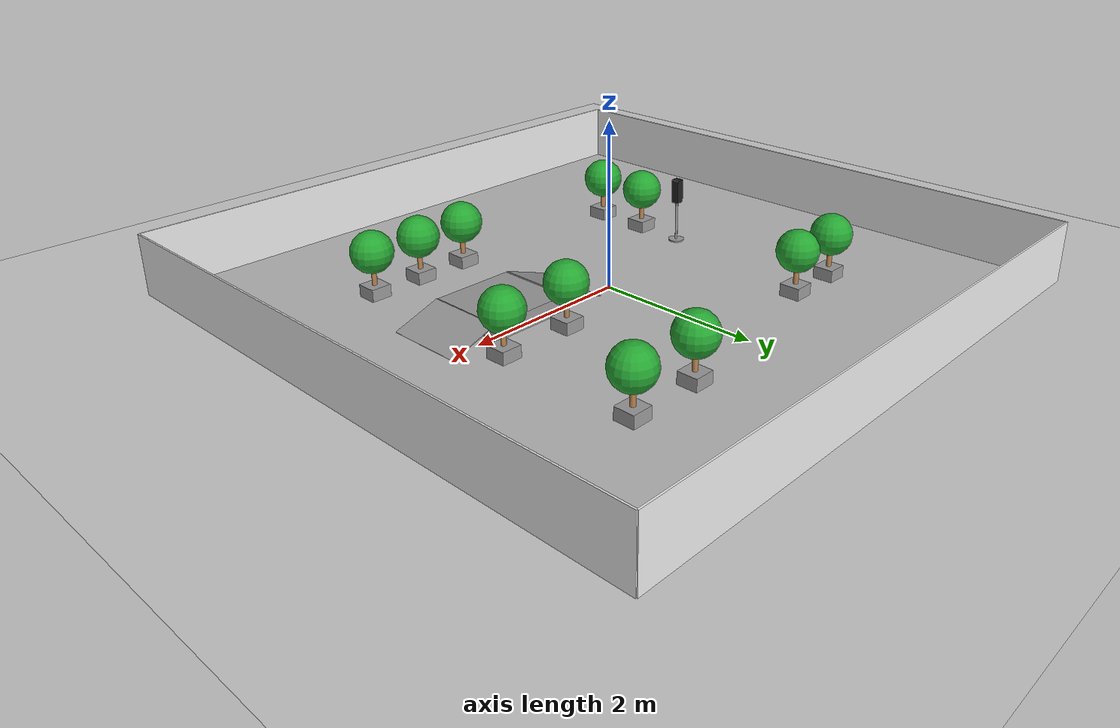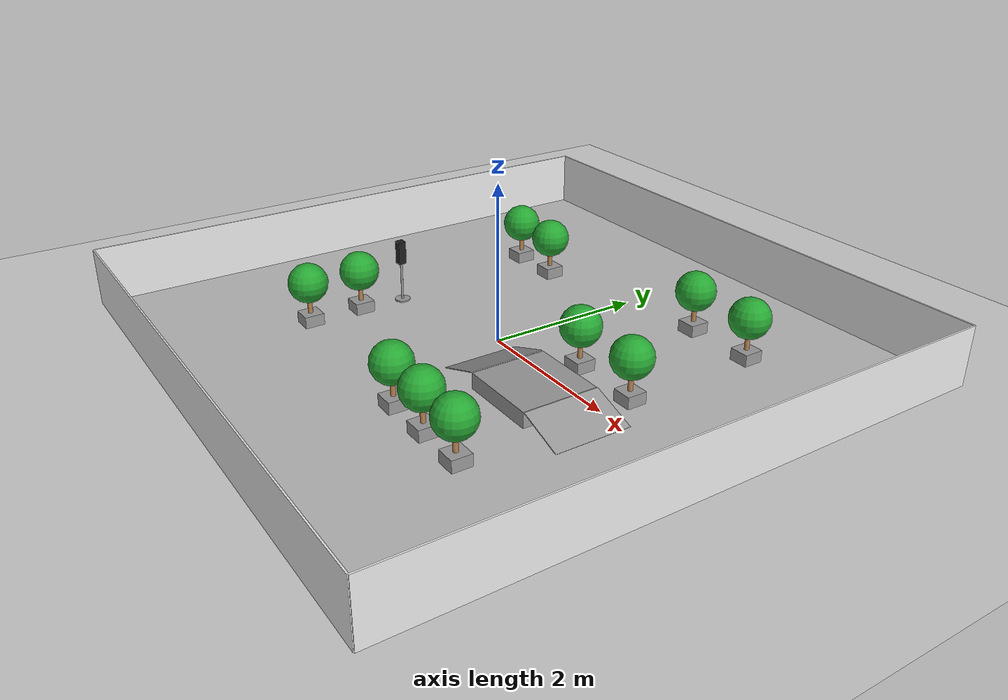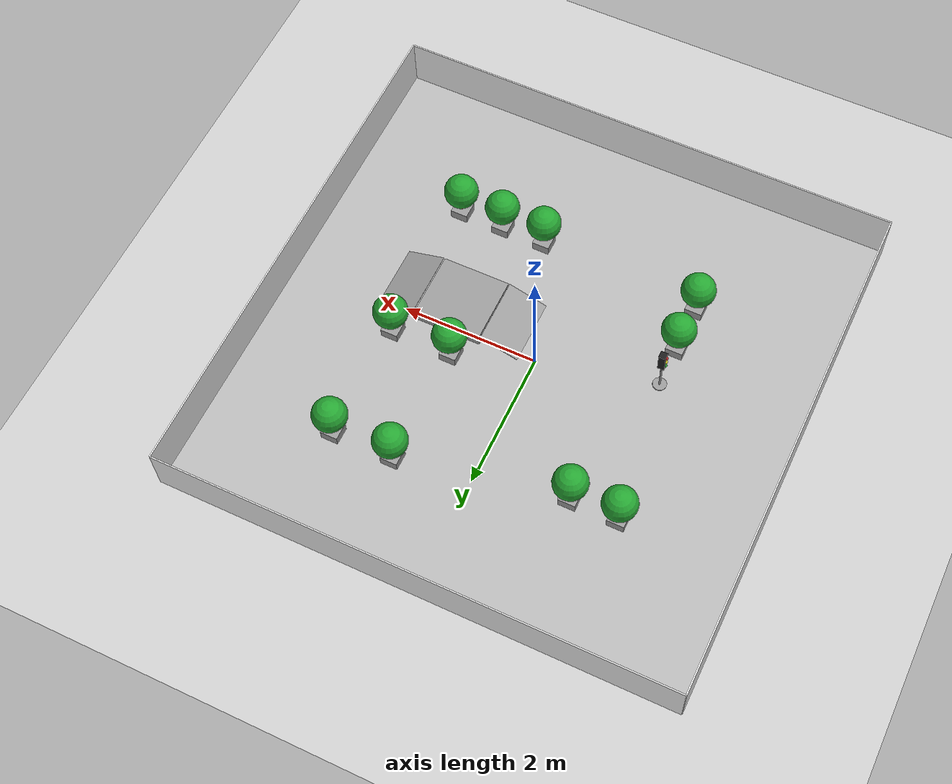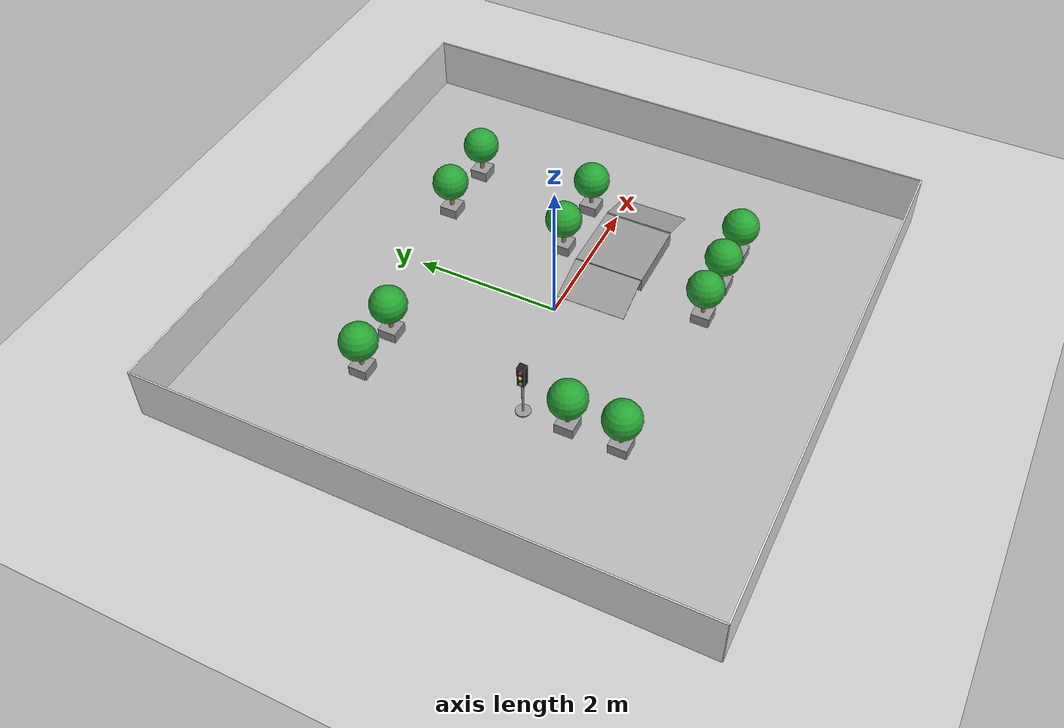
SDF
<?xml version="1.0" ?>
<sdf version="1.5">
  <world name="limo_sandtable_world">
    <!-- A global light source -->
    <include>
      <uri>model://sun</uri>
    </include>
    <!-- A ground plane -->
    <include>
      <uri>model://ground_plane</uri>
    </include>

    <!-- Physics settings -->
    <physics type='ode'>
      <max_step_size>0.001</max_step_size>
      <real_time_factor>1</real_time_factor>
      <real_time_update_rate>1000</real_time_update_rate>
      <gravity>0 0 -9.8</gravity>
    </physics>

    <!-- Sandtable Textured Ground (Visual Only, scaled to 7.5m) -->
    <model name='sandtable_ground'>
      <static>true</static>
      <link name='link'>
        <pose>0 0 0.0005 0 0 0</pose>
        <visual name='visual'>
          <geometry>
            <box>
              <size>7.5 7.5 0.001</size>
            </box>
          </geometry>
          <material>
            <script>
              <uri>file:///home/zf/catkin_ws/src/limo_gazebo_sim/materials/scripts</uri>
              <uri>file:///home/zf/catkin_ws/src/limo_gazebo_sim/materials/textures</uri>
              <name>LimoMap</name>
            </script>
          </material>
        </visual>
      </link>
    </model>

    <!-- White Enclosure Walls (With Collision, scaled 2.5x) -->
    <model name='enclosure_walls'>
      <static>true</static>
      <!-- North Wall -->
      <link name='wall_north'>
        <pose>3.75 0 0.375 0 0 0</pose>
        <collision name='collision'>
          <geometry>
            <box>
              <size>0.02 7.5 0.75</size>
            </box>
          </geometry>
        </collision>
        <visual name='visual'>
          <geometry>
            <box>
              <size>0.02 7.5 0.75</size>
            </box>
          </geometry>
          <material>
            <script>
              <name>Gazebo/White</name>
              <uri>file://media/materials/scripts/gazebo.material</uri>
            </script>
          </material>
        </visual>
      </link>
      <!-- South Wall -->
      <link name='wall_south'>
        <pose>-3.75 0 0.375 0 0 0</pose>
        <collision name='collision'>
          <geometry>
            <box>
              <size>0.02 7.5 0.75</size>
            </box>
          </geometry>
        </collision>
        <visual name='visual'>
          <geometry>
            <box>
              <size>0.02 7.5 0.75</size>
            </box>
          </geometry>
          <material>
            <script>
              <name>Gazebo/White</name>
              <uri>file://media/materials/scripts/gazebo.material</uri>
            </script>
          </material>
        </visual>
      </link>
      <!-- East Wall -->
      <link name='wall_east'>
        <pose>0 3.75 0.375 0 0 0</pose>
        <collision name='collision'>
          <geometry>
            <box>
              <size>7.5 0.02 0.75</size>
            </box>
          </geometry>
        </collision>
        <visual name='visual'>
          <geometry>
            <box>
              <size>7.5 0.02 0.75</size>
            </box>
          </geometry>
          <material>
            <script>
              <name>Gazebo/White</name>
              <uri>file://media/materials/scripts/gazebo.material</uri>
            </script>
          </material>
        </visual>
      </link>
      <!-- West Wall -->
      <link name='wall_west'>
        <pose>0 -3.75 0.375 0 0 0</pose>
        <collision name='collision'>
          <geometry>
            <box>
              <size>7.5 0.02 0.75</size>
            </box>
          </geometry>
        </collision>
        <visual name='visual'>
          <geometry>
            <box>
              <size>7.5 0.02 0.75</size>
            </box>
          </geometry>
          <material>
            <script>
              <name>Gazebo/White</name>
              <uri>file://media/materials/scripts/gazebo.material</uri>
            </script>
          </material>
        </visual>
      </link>
    </model>

    <!-- ================= 自定义生成障碍物开始 ================= -->
    <!-- Slope Model (Double-sided symmetric ramp/bridge, X-aligned) -->
    <model name='slope_obstacle'>
      <static>true</static>
      <pose>1.32 -0.4 0.0 0 0 0</pose>
      <link name='link'>
        <!-- Flat Top -->
        <collision name='flat_collision'>
          <pose>0 0 0.1 0 0 0</pose>
          <geometry>
            <box>
              <size>1.0 0.96 0.2</size>
            </box>
          </geometry>
        </collision>
        <visual name='flat_visual'>
          <pose>0 0 0.1 0 0 0</pose>
          <geometry>
            <box>
              <size>1.0 0.96 0.2</size>
            </box>
          </geometry>
          <material>
            <script>
              <name>Gazebo/Grey</name>
              <uri>file://media/materials/scripts/gazebo.material</uri>
            </script>
          </material>
        </visual>

        <!-- West Slope (Up) -->
        <collision name='west_collision'>
          <pose>-0.8 0 0.1 0 -0.3398 0</pose>
          <geometry>
            <box>
              <size>0.6 0.96 0.01</size>
            </box>
          </geometry>
        </collision>
        <visual name='west_visual'>
          <pose>-0.8 0 0.1 0 -0.3398 0</pose>
          <geometry>
            <box>
              <size>0.6 0.96 0.01</size>
            </box>
          </geometry>
          <material>
            <script>
              <name>Gazebo/Grey</name>
              <uri>file://media/materials/scripts/gazebo.material</uri>
            </script>
          </material>
        </visual>

        <!-- East Slope (Down) -->
        <collision name='east_collision'>
          <pose>0.8 0 0.1 0 0.3398 0</pose>
          <geometry>
            <box>
              <size>0.6 0.96 0.01</size>
            </box>
          </geometry>
        </collision>
        <visual name='east_visual'>
          <pose>0.8 0 0.1 0 0.3398 0</pose>
          <geometry>
            <box>
              <size>0.6 0.96 0.01</size>
            </box>
          </geometry>
          <material>
            <script>
              <name>Gazebo/Grey</name>
              <uri>file://media/materials/scripts/gazebo.material</uri>
            </script>
          </material>
        </visual>
      </link>
    </model>

    <!-- Traffic Light Model (placed inside Experimental Building green area facing West) -->
    <model name='traffic_light_obstacle'>
      <static>true</static>
      <pose>-1.7 -0.4 0.0 0 0 0</pose>
      <link name='link'>
        <!-- Base -->
        <collision name='base_collision'>
          <pose>0 0 0.01 0 0 0</pose>
          <geometry>
            <cylinder>
              <radius>0.1</radius>
              <length>0.02</length>
            </cylinder>
          </geometry>
        </collision>
        <visual name='base_visual'>
          <pose>0 0 0.01 0 0 0</pose>
          <geometry>
            <cylinder>
              <radius>0.1</radius>
              <length>0.02</length>
            </cylinder>
          </geometry>
          <material>
            <script>
              <name>Gazebo/Grey</name>
              <uri>file://media/materials/scripts/gazebo.material</uri>
            </script>
          </material>
        </visual>
        <!-- Pole -->
        <collision name='pole_collision'>
          <pose>0 0 0.27 0 0 0</pose>
          <geometry>
            <cylinder>
              <radius>0.015</radius>
              <length>0.5</length>
            </cylinder>
          </geometry>
        </collision>
        <visual name='pole_visual'>
          <pose>0 0 0.27 0 0 0</pose>
          <geometry>
            <cylinder>
              <radius>0.015</radius>
              <length>0.5</length>
            </cylinder>
          </geometry>
          <material>
            <script>
              <name>Gazebo/Grey</name>
              <uri>file://media/materials/scripts/gazebo.material</uri>
            </script>
          </material>
        </visual>
        <!-- Box Head -->
        <collision name='head_collision'>
          <pose>0 0 0.67 0 0 0</pose>
          <geometry>
            <box>
              <size>0.1 0.1 0.3</size>
            </box>
          </geometry>
        </collision>
        <visual name='head_visual'>
          <pose>0 0 0.67 0 0 0</pose>
          <geometry>
            <box>
              <size>0.1 0.1 0.3</size>
            </box>
          </geometry>
          <material>
            <script>
              <name>Gazebo/Black</name>
              <uri>file://media/materials/scripts/gazebo.material</uri>
            </script>
          </material>
        </visual>
        <!-- Red Light (Sphere facing West) -->
        <visual name='red_light_visual'>
          <pose>-0.05 0 0.77 0 0 0</pose>
          <geometry>
            <sphere>
              <radius>0.025</radius>
            </sphere>
          </geometry>
          <material>
            <script>
              <name>Gazebo/Red</name>
              <uri>file://media/materials/scripts/gazebo.material</uri>
            </script>
          </material>
        </visual>
        <!-- Yellow Light (Sphere facing West) -->
        <visual name='yellow_light_visual'>
          <pose>-0.05 0 0.67 0 0 0</pose>
          <geometry>
            <sphere>
              <radius>0.025</radius>
            </sphere>
          </geometry>
          <material>
            <script>
              <name>Gazebo/Yellow</name>
              <uri>file://media/materials/scripts/gazebo.material</uri>
            </script>
          </material>
        </visual>
        <!-- Green Light (Sphere facing West) -->
        <visual name='green_light_visual'>
          <pose>-0.05 0 0.57 0 0 0</pose>
          <geometry>
            <sphere>
              <radius>0.025</radius>
            </sphere>
          </geometry>
          <material>
            <script>
              <name>Gazebo/Green</name>
              <uri>file://media/materials/scripts/gazebo.material</uri>
            </script>
          </material>
        </visual>
      </link>
    </model>

    <!-- Tree Model: tree_teaching_2 (placed at X=-1.3, Y=1.7) -->
    <model name='tree_teaching_2'>
      <static>true</static>
      <pose>-1.3 1.7 0 0 0 0</pose>
      <link name='link'>
        <!-- Pot -->
        <collision name='pot_collision'>
          <pose>0 0 0.075 0 0 0</pose>
          <geometry>
            <box>
              <size>0.25 0.25 0.15</size>
            </box>
          </geometry>
        </collision>
        <visual name='pot_visual'>
          <pose>0 0 0.075 0 0 0</pose>
          <geometry>
            <box>
              <size>0.25 0.25 0.15</size>
            </box>
          </geometry>
          <material>
            <script>
              <name>Gazebo/Grey</name>
              <uri>file://media/materials/scripts/gazebo.material</uri>
            </script>
          </material>
        </visual>
        <!-- Trunk -->
        <collision name='trunk_collision'>
          <pose>0 0 0.25 0 0 0</pose>
          <geometry>
            <cylinder>
              <radius>0.03</radius>
              <length>0.2</length>
            </cylinder>
          </geometry>
        </collision>
        <visual name='trunk_visual'>
          <pose>0 0 0.25 0 0 0</pose>
          <geometry>
            <cylinder>
              <radius>0.03</radius>
              <length>0.2</length>
            </cylinder>
          </geometry>
          <material>
            <script>
              <name>Gazebo/Wood</name>
              <uri>file://media/materials/scripts/gazebo.material</uri>
            </script>
          </material>
        </visual>
        <!-- Foliage (Sphere) -->
        <collision name='foliage_collision'>
          <pose>0 0 0.55 0 0 0</pose>
          <geometry>
            <sphere>
              <radius>0.25</radius>
            </sphere>
          </geometry>
        </collision>
        <visual name='foliage_visual'>
          <pose>0 0 0.55 0 0 0</pose>
          <geometry>
            <sphere>
              <radius>0.25</radius>
            </sphere>
          </geometry>
          <material>
            <script>
              <name>Gazebo/Green</name>
              <uri>file://media/materials/scripts/gazebo.material</uri>
            </script>
          </material>
        </visual>
      </link>
    </model>

    <!-- Tree Model: tree_teaching_2_2 (placed at X=-2, Y=1.7) -->
    <model name='tree_teaching_2_2'>
      <static>true</static>
      <pose>-2 1.7 0 0 0 0</pose>
      <link name='link'>
        <!-- Pot -->
        <collision name='pot_collision'>
          <pose>0 0 0.075 0 0 0</pose>
          <geometry>
            <box>
              <size>0.25 0.25 0.15</size>
            </box>
          </geometry>
        </collision>
        <visual name='pot_visual'>
          <pose>0 0 0.075 0 0 0</pose>
          <geometry>
            <box>
              <size>0.25 0.25 0.15</size>
            </box>
          </geometry>
          <material>
            <script>
              <name>Gazebo/Grey</name>
              <uri>file://media/materials/scripts/gazebo.material</uri>
            </script>
          </material>
        </visual>
        <!-- Trunk -->
        <collision name='trunk_collision'>
          <pose>0 0 0.25 0 0 0</pose>
          <geometry>
            <cylinder>
              <radius>0.03</radius>
              <length>0.2</length>
            </cylinder>
          </geometry>
        </collision>
        <visual name='trunk_visual'>
          <pose>0 0 0.25 0 0 0</pose>
          <geometry>
            <cylinder>
              <radius>0.03</radius>
              <length>0.2</length>
            </cylinder>
          </geometry>
          <material>
            <script>
              <name>Gazebo/Wood</name>
              <uri>file://media/materials/scripts/gazebo.material</uri>
            </script>
          </material>
        </visual>
        <!-- Foliage (Sphere) -->
        <collision name='foliage_collision'>
          <pose>0 0 0.55 0 0 0</pose>
          <geometry>
            <sphere>
              <radius>0.25</radius>
            </sphere>
          </geometry>
        </collision>
        <visual name='foliage_visual'>
          <pose>0 0 0.55 0 0 0</pose>
          <geometry>
            <sphere>
              <radius>0.25</radius>
            </sphere>
          </geometry>
          <material>
            <script>
              <name>Gazebo/Green</name>
              <uri>file://media/materials/scripts/gazebo.material</uri>
            </script>
          </material>
        </visual>
      </link>
    </model>

    <!-- Tree Model: tree_library_1 (placed at X=1.1, Y=0.4) -->
    <model name='tree_library_1'>
      <static>true</static>
      <pose>1.1 0.4 0 0 0 0</pose>
      <link name='link'>
        <!-- Pot -->
        <collision name='pot_collision'>
          <pose>0 0 0.075 0 0 0</pose>
          <geometry>
            <box>
              <size>0.25 0.25 0.15</size>
            </box>
          </geometry>
        </collision>
        <visual name='pot_visual'>
          <pose>0 0 0.075 0 0 0</pose>
          <geometry>
            <box>
              <size>0.25 0.25 0.15</size>
            </box>
          </geometry>
          <material>
            <script>
              <name>Gazebo/Grey</name>
              <uri>file://media/materials/scripts/gazebo.material</uri>
            </script>
          </material>
        </visual>
        <!-- Trunk -->
        <collision name='trunk_collision'>
          <pose>0 0 0.25 0 0 0</pose>
          <geometry>
            <cylinder>
              <radius>0.03</radius>
              <length>0.2</length>
            </cylinder>
          </geometry>
        </collision>
        <visual name='trunk_visual'>
          <pose>0 0 0.25 0 0 0</pose>
          <geometry>
            <cylinder>
              <radius>0.03</radius>
              <length>0.2</length>
            </cylinder>
          </geometry>
          <material>
            <script>
              <name>Gazebo/Wood</name>
              <uri>file://media/materials/scripts/gazebo.material</uri>
            </script>
          </material>
        </visual>
        <!-- Foliage (Sphere) -->
        <collision name='foliage_collision'>
          <pose>0 0 0.55 0 0 0</pose>
          <geometry>
            <sphere>
              <radius>0.25</radius>
            </sphere>
          </geometry>
        </collision>
        <visual name='foliage_visual'>
          <pose>0 0 0.55 0 0 0</pose>
          <geometry>
            <sphere>
              <radius>0.25</radius>
            </sphere>
          </geometry>
          <material>
            <script>
              <name>Gazebo/Green</name>
              <uri>file://media/materials/scripts/gazebo.material</uri>
            </script>
          </material>
        </visual>
      </link>
    </model>

    <!-- Tree Model: tree_library_2 (placed at X=2.0, Y=0.4) -->
    <model name='tree_library_2'>
      <static>true</static>
      <pose>2.0 0.4 0 0 0 0</pose>
      <link name='link'>
        <!-- Pot -->
        <collision name='pot_collision'>
          <pose>0 0 0.075 0 0 0</pose>
          <geometry>
            <box>
              <size>0.25 0.25 0.15</size>
            </box>
          </geometry>
        </collision>
        <visual name='pot_visual'>
          <pose>0 0 0.075 0 0 0</pose>
          <geometry>
            <box>
              <size>0.25 0.25 0.15</size>
            </box>
          </geometry>
          <material>
            <script>
              <name>Gazebo/Grey</name>
              <uri>file://media/materials/scripts/gazebo.material</uri>
            </script>
          </material>
        </visual>
        <!-- Trunk -->
        <collision name='trunk_collision'>
          <pose>0 0 0.25 0 0 0</pose>
          <geometry>
            <cylinder>
              <radius>0.03</radius>
              <length>0.2</length>
            </cylinder>
          </geometry>
        </collision>
        <visual name='trunk_visual'>
          <pose>0 0 0.25 0 0 0</pose>
          <geometry>
            <cylinder>
              <radius>0.03</radius>
              <length>0.2</length>
            </cylinder>
          </geometry>
          <material>
            <script>
              <name>Gazebo/Wood</name>
              <uri>file://media/materials/scripts/gazebo.material</uri>
            </script>
          </material>
        </visual>
        <!-- Foliage (Sphere) -->
        <collision name='foliage_collision'>
          <pose>0 0 0.55 0 0 0</pose>
          <geometry>
            <sphere>
              <radius>0.25</radius>
            </sphere>
          </geometry>
        </collision>
        <visual name='foliage_visual'>
          <pose>0 0 0.55 0 0 0</pose>
          <geometry>
            <sphere>
              <radius>0.25</radius>
            </sphere>
          </geometry>
          <material>
            <script>
              <name>Gazebo/Green</name>
              <uri>file://media/materials/scripts/gazebo.material</uri>
            </script>
          </material>
        </visual>
      </link>
    </model>

    <!-- Tree Model: tree_library_3 (placed at X=1.1, Y=2.15) -->
    <model name='tree_library_3'>
      <static>true</static>
      <pose>1.1 2.15 0 0 0 0</pose>
      <link name='link'>
        <!-- Pot -->
        <collision name='pot_collision'>
          <pose>0 0 0.075 0 0 0</pose>
          <geometry>
            <box>
              <size>0.25 0.25 0.15</size>
            </box>
          </geometry>
        </collision>
        <visual name='pot_visual'>
          <pose>0 0 0.075 0 0 0</pose>
          <geometry>
            <box>
              <size>0.25 0.25 0.15</size>
            </box>
          </geometry>
          <material>
            <script>
              <name>Gazebo/Grey</name>
              <uri>file://media/materials/scripts/gazebo.material</uri>
            </script>
          </material>
        </visual>
        <!-- Trunk -->
        <collision name='trunk_collision'>
          <pose>0 0 0.25 0 0 0</pose>
          <geometry>
            <cylinder>
              <radius>0.03</radius>
              <length>0.2</length>
            </cylinder>
          </geometry>
        </collision>
        <visual name='trunk_visual'>
          <pose>0 0 0.25 0 0 0</pose>
          <geometry>
            <cylinder>
              <radius>0.03</radius>
              <length>0.2</length>
            </cylinder>
          </geometry>
          <material>
            <script>
              <name>Gazebo/Wood</name>
              <uri>file://media/materials/scripts/gazebo.material</uri>
            </script>
          </material>
        </visual>
        <!-- Foliage (Sphere) -->
        <collision name='foliage_collision'>
          <pose>0 0 0.55 0 0 0</pose>
          <geometry>
            <sphere>
              <radius>0.25</radius>
            </sphere>
          </geometry>
        </collision>
        <visual name='foliage_visual'>
          <pose>0 0 0.55 0 0 0</pose>
          <geometry>
            <sphere>
              <radius>0.25</radius>
            </sphere>
          </geometry>
          <material>
            <script>
              <name>Gazebo/Green</name>
              <uri>file://media/materials/scripts/gazebo.material</uri>
            </script>
          </material>
        </visual>
      </link>
    </model>

    <!-- Tree Model: tree_library_4 (placed at X=2.0, Y=2.15) -->
    <model name='tree_library_4'>
      <static>true</static>
      <pose>2.0 2.15 0 0 0 0</pose>
      <link name='link'>
        <!-- Pot -->
        <collision name='pot_collision'>
          <pose>0 0 0.075 0 0 0</pose>
          <geometry>
            <box>
              <size>0.25 0.25 0.15</size>
            </box>
          </geometry>
        </collision>
        <visual name='pot_visual'>
          <pose>0 0 0.075 0 0 0</pose>
          <geometry>
            <box>
              <size>0.25 0.25 0.15</size>
            </box>
          </geometry>
          <material>
            <script>
              <name>Gazebo/Grey</name>
              <uri>file://media/materials/scripts/gazebo.material</uri>
            </script>
          </material>
        </visual>
        <!-- Trunk -->
        <collision name='trunk_collision'>
          <pose>0 0 0.25 0 0 0</pose>
          <geometry>
            <cylinder>
              <radius>0.03</radius>
              <length>0.2</length>
            </cylinder>
          </geometry>
        </collision>
        <visual name='trunk_visual'>
          <pose>0 0 0.25 0 0 0</pose>
          <geometry>
            <cylinder>
              <radius>0.03</radius>
              <length>0.2</length>
            </cylinder>
          </geometry>
          <material>
            <script>
              <name>Gazebo/Wood</name>
              <uri>file://media/materials/scripts/gazebo.material</uri>
            </script>
          </material>
        </visual>
        <!-- Foliage (Sphere) -->
        <collision name='foliage_collision'>
          <pose>0 0 0.55 0 0 0</pose>
          <geometry>
            <sphere>
              <radius>0.25</radius>
            </sphere>
          </geometry>
        </collision>
        <visual name='foliage_visual'>
          <pose>0 0 0.55 0 0 0</pose>
          <geometry>
            <sphere>
              <radius>0.25</radius>
            </sphere>
          </geometry>
          <material>
            <script>
              <name>Gazebo/Green</name>
              <uri>file://media/materials/scripts/gazebo.material</uri>
            </script>
          </material>
        </visual>
      </link>
    </model>

    <!-- Tree Model: tree_gym_1 (placed at X=-1.7, Y=-1.7) -->
    <model name='tree_gym_1'>
      <static>true</static>
      <pose>-1.7 -1.7 0 0 0 0</pose>
      <link name='link'>
        <!-- Pot -->
        <collision name='pot_collision'>
          <pose>0 0 0.075 0 0 0</pose>
          <geometry>
            <box>
              <size>0.25 0.25 0.15</size>
            </box>
          </geometry>
        </collision>
        <visual name='pot_visual'>
          <pose>0 0 0.075 0 0 0</pose>
          <geometry>
            <box>
              <size>0.25 0.25 0.15</size>
            </box>
          </geometry>
          <material>
            <script>
              <name>Gazebo/Grey</name>
              <uri>file://media/materials/scripts/gazebo.material</uri>
            </script>
          </material>
        </visual>
        <!-- Trunk -->
        <collision name='trunk_collision'>
          <pose>0 0 0.25 0 0 0</pose>
          <geometry>
            <cylinder>
              <radius>0.03</radius>
              <length>0.2</length>
            </cylinder>
          </geometry>
        </collision>
        <visual name='trunk_visual'>
          <pose>0 0 0.25 0 0 0</pose>
          <geometry>
            <cylinder>
              <radius>0.03</radius>
              <length>0.2</length>
            </cylinder>
          </geometry>
          <material>
            <script>
              <name>Gazebo/Wood</name>
              <uri>file://media/materials/scripts/gazebo.material</uri>
            </script>
          </material>
        </visual>
        <!-- Foliage (Sphere) -->
        <collision name='foliage_collision'>
          <pose>0 0 0.55 0 0 0</pose>
          <geometry>
            <sphere>
              <radius>0.25</radius>
            </sphere>
          </geometry>
        </collision>
        <visual name='foliage_visual'>
          <pose>0 0 0.55 0 0 0</pose>
          <geometry>
            <sphere>
              <radius>0.25</radius>
            </sphere>
          </geometry>
          <material>
            <script>
              <name>Gazebo/Green</name>
              <uri>file://media/materials/scripts/gazebo.material</uri>
            </script>
          </material>
        </visual>
      </link>
    </model>

    <!-- Tree Model: tree_experimental_1 (placed at X=-1.7, Y=-1.0) -->
    <model name='tree_experimental_1'>
      <static>true</static>
      <pose>-1.7 -1.0 0 0 0 0</pose>
      <link name='link'>
        <!-- Pot -->
        <collision name='pot_collision'>
          <pose>0 0 0.075 0 0 0</pose>
          <geometry>
            <box>
              <size>0.25 0.25 0.15</size>
            </box>
          </geometry>
        </collision>
        <visual name='pot_visual'>
          <pose>0 0 0.075 0 0 0</pose>
          <geometry>
            <box>
              <size>0.25 0.25 0.15</size>
            </box>
          </geometry>
          <material>
            <script>
              <name>Gazebo/Grey</name>
              <uri>file://media/materials/scripts/gazebo.material</uri>
            </script>
          </material>
        </visual>
        <!-- Trunk -->
        <collision name='trunk_collision'>
          <pose>0 0 0.25 0 0 0</pose>
          <geometry>
            <cylinder>
              <radius>0.03</radius>
              <length>0.2</length>
            </cylinder>
          </geometry>
        </collision>
        <visual name='trunk_visual'>
          <pose>0 0 0.25 0 0 0</pose>
          <geometry>
            <cylinder>
              <radius>0.03</radius>
              <length>0.2</length>
            </cylinder>
          </geometry>
          <material>
            <script>
              <name>Gazebo/Wood</name>
              <uri>file://media/materials/scripts/gazebo.material</uri>
            </script>
          </material>
        </visual>
        <!-- Foliage (Sphere) -->
        <collision name='foliage_collision'>
          <pose>0 0 0.55 0 0 0</pose>
          <geometry>
            <sphere>
              <radius>0.25</radius>
            </sphere>
          </geometry>
        </collision>
        <visual name='foliage_visual'>
          <pose>0 0 0.55 0 0 0</pose>
          <geometry>
            <sphere>
              <radius>0.25</radius>
            </sphere>
          </geometry>
          <material>
            <script>
              <name>Gazebo/Green</name>
              <uri>file://media/materials/scripts/gazebo.material</uri>
            </script>
          </material>
        </visual>
      </link>
    </model>

    <!-- Tree Model: tree_experimental_1_2 (placed at X=2.0, Y=-1.8) -->
    <model name='tree_experimental_1_2'>
      <static>true</static>
      <pose>2.0 -1.8 0 0 0 0</pose>
      <link name='link'>
        <!-- Pot -->
        <collision name='pot_collision'>
          <pose>0 0 0.075 0 0 0</pose>
          <geometry>
            <box>
              <size>0.25 0.25 0.15</size>
            </box>
          </geometry>
        </collision>
        <visual name='pot_visual'>
          <pose>0 0 0.075 0 0 0</pose>
          <geometry>
            <box>
              <size>0.25 0.25 0.15</size>
            </box>
          </geometry>
          <material>
            <script>
              <name>Gazebo/Grey</name>
              <uri>file://media/materials/scripts/gazebo.material</uri>
            </script>
          </material>
        </visual>
        <!-- Trunk -->
        <collision name='trunk_collision'>
          <pose>0 0 0.25 0 0 0</pose>
          <geometry>
            <cylinder>
              <radius>0.03</radius>
              <length>0.2</length>
            </cylinder>
          </geometry>
        </collision>
        <visual name='trunk_visual'>
          <pose>0 0 0.25 0 0 0</pose>
          <geometry>
            <cylinder>
              <radius>0.03</radius>
              <length>0.2</length>
            </cylinder>
          </geometry>
          <material>
            <script>
              <name>Gazebo/Wood</name>
              <uri>file://media/materials/scripts/gazebo.material</uri>
            </script>
          </material>
        </visual>
        <!-- Foliage (Sphere) -->
        <collision name='foliage_collision'>
          <pose>0 0 0.55 0 0 0</pose>
          <geometry>
            <sphere>
              <radius>0.25</radius>
            </sphere>
          </geometry>
        </collision>
        <visual name='foliage_visual'>
          <pose>0 0 0.55 0 0 0</pose>
          <geometry>
            <sphere>
              <radius>0.25</radius>
            </sphere>
          </geometry>
          <material>
            <script>
              <name>Gazebo/Green</name>
              <uri>file://media/materials/scripts/gazebo.material</uri>
            </script>
          </material>
        </visual>
      </link>
    </model>

    <!-- Tree Model: tree_experimental_1_3 (placed at X=1.35, Y=-1.8) -->
    <model name='tree_experimental_1_3'>
      <static>true</static>
      <pose>1.35 -1.8 0 0 0 0</pose>
      <link name='link'>
        <!-- Pot -->
        <collision name='pot_collision'>
          <pose>0 0 0.075 0 0 0</pose>
          <geometry>
            <box>
              <size>0.25 0.25 0.15</size>
            </box>
          </geometry>
        </collision>
        <visual name='pot_visual'>
          <pose>0 0 0.075 0 0 0</pose>
          <geometry>
            <box>
              <size>0.25 0.25 0.15</size>
            </box>
          </geometry>
          <material>
            <script>
              <name>Gazebo/Grey</name>
              <uri>file://media/materials/scripts/gazebo.material</uri>
            </script>
          </material>
        </visual>
        <!-- Trunk -->
        <collision name='trunk_collision'>
          <pose>0 0 0.25 0 0 0</pose>
          <geometry>
            <cylinder>
              <radius>0.03</radius>
              <length>0.2</length>
            </cylinder>
          </geometry>
        </collision>
        <visual name='trunk_visual'>
          <pose>0 0 0.25 0 0 0</pose>
          <geometry>
            <cylinder>
              <radius>0.03</radius>
              <length>0.2</length>
            </cylinder>
          </geometry>
          <material>
            <script>
              <name>Gazebo/Wood</name>
              <uri>file://media/materials/scripts/gazebo.material</uri>
            </script>
          </material>
        </visual>
        <!-- Foliage (Sphere) -->
        <collision name='foliage_collision'>
          <pose>0 0 0.55 0 0 0</pose>
          <geometry>
            <sphere>
              <radius>0.25</radius>
            </sphere>
          </geometry>
        </collision>
        <visual name='foliage_visual'>
          <pose>0 0 0.55 0 0 0</pose>
          <geometry>
            <sphere>
              <radius>0.25</radius>
            </sphere>
          </geometry>
          <material>
            <script>
              <name>Gazebo/Green</name>
              <uri>file://media/materials/scripts/gazebo.material</uri>
            </script>
          </material>
        </visual>
      </link>
    </model>

    <!-- Tree Model: tree_experimental_1_4 (placed at X=0.7, Y=-1.8) -->
    <model name='tree_experimental_1_4'>
      <static>true</static>
      <pose>0.7 -1.8 0 0 0 0</pose>
      <link name='link'>
        <!-- Pot -->
        <collision name='pot_collision'>
          <pose>0 0 0.075 0 0 0</pose>
          <geometry>
            <box>
              <size>0.25 0.25 0.15</size>
            </box>
          </geometry>
        </collision>
        <visual name='pot_visual'>
          <pose>0 0 0.075 0 0 0</pose>
          <geometry>
            <box>
              <size>0.25 0.25 0.15</size>
            </box>
          </geometry>
          <material>
            <script>
              <name>Gazebo/Grey</name>
              <uri>file://media/materials/scripts/gazebo.material</uri>
            </script>
          </material>
        </visual>
        <!-- Trunk -->
        <collision name='trunk_collision'>
          <pose>0 0 0.25 0 0 0</pose>
          <geometry>
            <cylinder>
              <radius>0.03</radius>
              <length>0.2</length>
            </cylinder>
          </geometry>
        </collision>
        <visual name='trunk_visual'>
          <pose>0 0 0.25 0 0 0</pose>
          <geometry>
            <cylinder>
              <radius>0.03</radius>
              <length>0.2</length>
            </cylinder>
          </geometry>
          <material>
            <script>
              <name>Gazebo/Wood</name>
              <uri>file://media/materials/scripts/gazebo.material</uri>
            </script>
          </material>
        </visual>
        <!-- Foliage (Sphere) -->
        <collision name='foliage_collision'>
          <pose>0 0 0.55 0 0 0</pose>
          <geometry>
            <sphere>
              <radius>0.25</radius>
            </sphere>
          </geometry>
        </collision>
        <visual name='foliage_visual'>
          <pose>0 0 0.55 0 0 0</pose>
          <geometry>
            <sphere>
              <radius>0.25</radius>
            </sphere>
          </geometry>
          <material>
            <script>
              <name>Gazebo/Green</name>
              <uri>file://media/materials/scripts/gazebo.material</uri>
            </script>
          </material>
        </visual>
      </link>
    </model>

    <!-- ================= 自定义生成障碍物结束 ================= -->
  </world>
</sdf>
